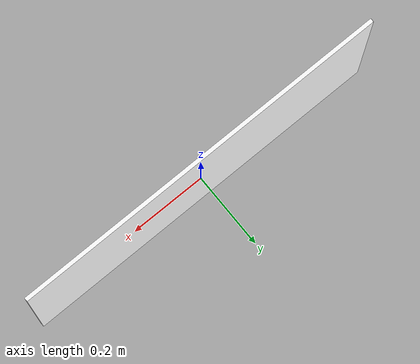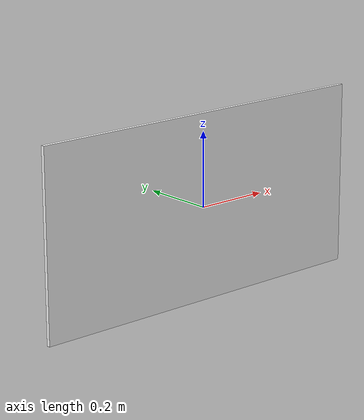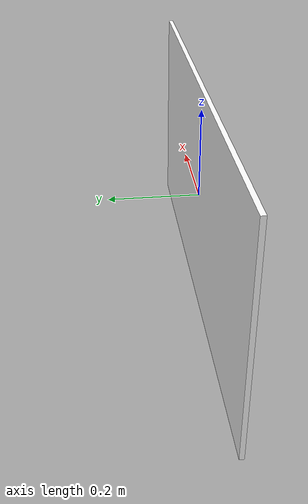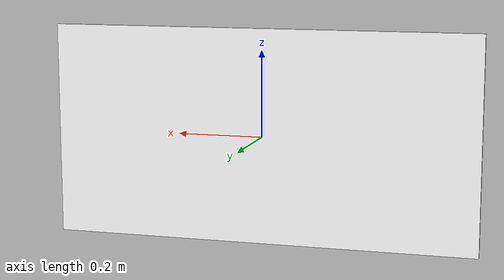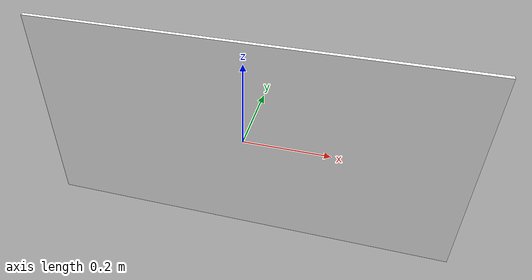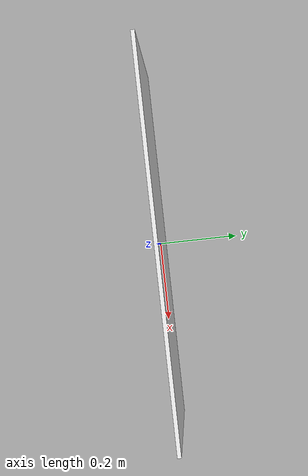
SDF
<?xml version="1.0" ?>
<sdf version="1.8">

    <model name="stena" canonical_link='link'>
        <static>true</static>
        <link name="link">
            <collision name="collision">
                <geometry>
                    <box>
                        <size>1.0 0.01 0.5</size>
                    </box>
                </geometry>
            </collision>
            <visual name="visual">
                <geometry>
                    <box>
                        <size>1.0 0.01 0.5</size>
                    </box>
                </geometry>
                <material>
                    <ambient>1 1 1 1</ambient>
                    <diffuse>1 1 1 1</diffuse>
                    <specular>0 0 0 1</specular>
		    <emissive>0 0 0 1</emissive>
                </material>
            </visual>
        </link>
    </model>

</sdf>
